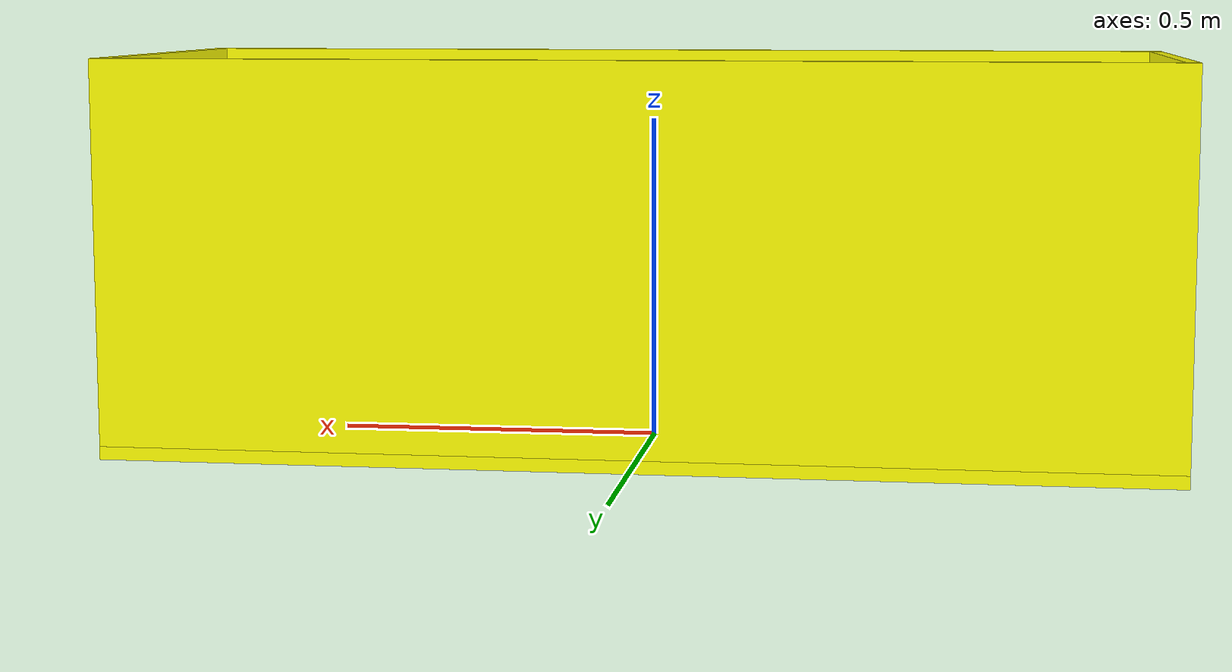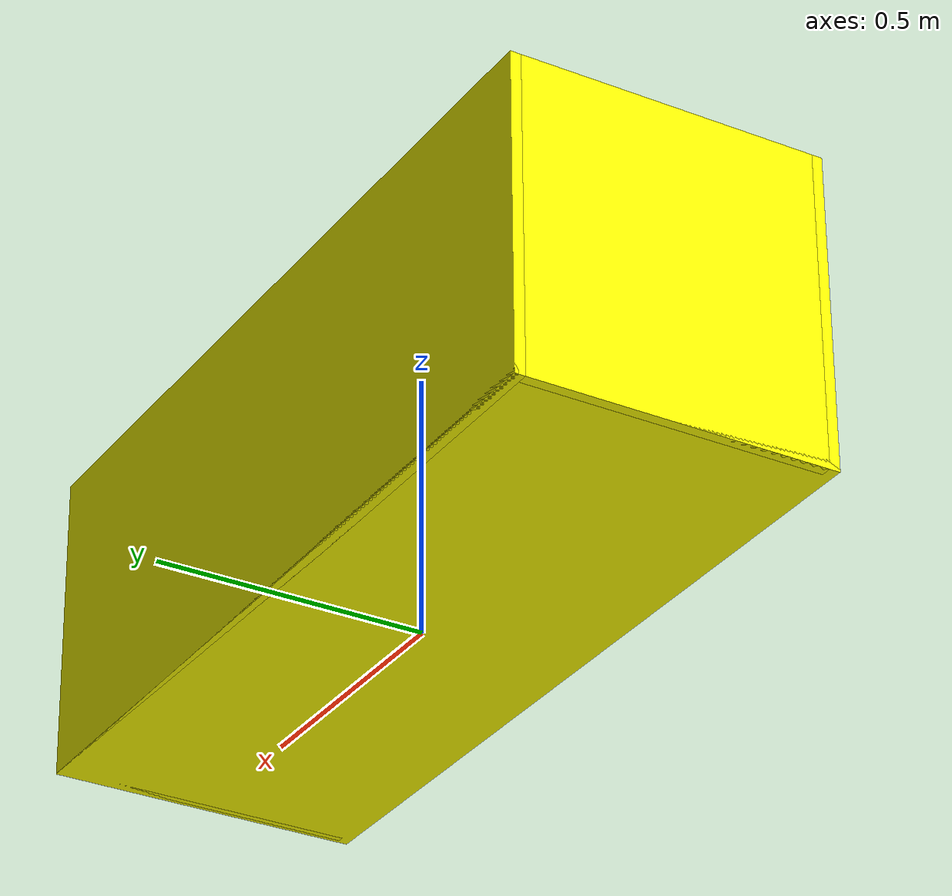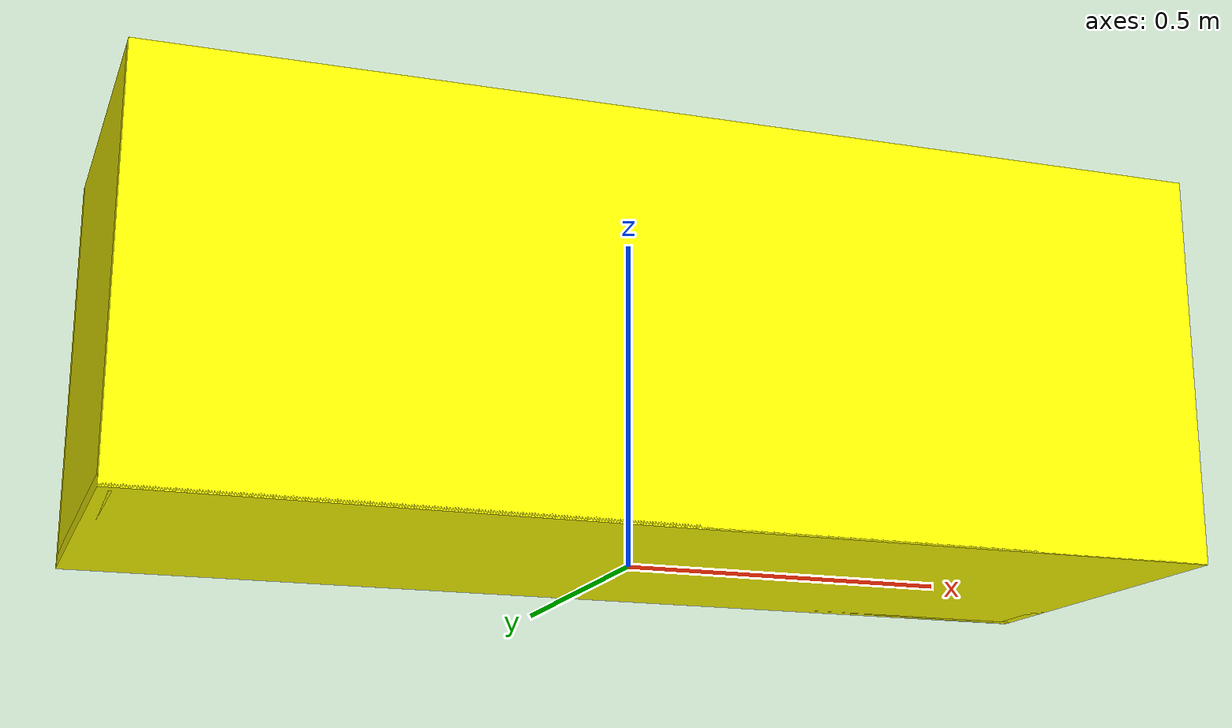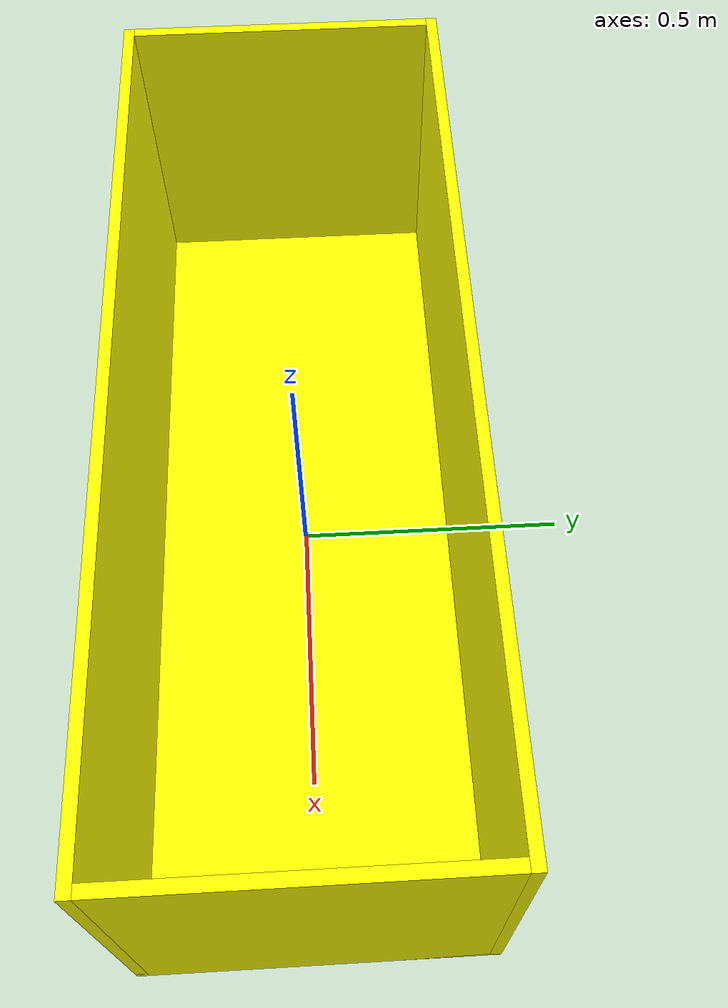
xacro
<?xml version="1.0"?>
<robot name="trash_bin" xmlns:xacro="http://ros.org/wiki/xacro">
  <xacro:property name="length" value="1.6"/>
  <xacro:property name="width" value="0.6"/>
  <xacro:property name="height" value="0.6"/>
  <xacro:property name="wall_thickness" value="0.02"/>

  <material name="default_color">
    <color rgba="1.0 1.0 0.0 1.0"/>
  </material>

  <link name="base_link">
    <inertial>
      <mass value="0.001"/>
      <inertia ixx="0.0001" ixy="0.0" ixz="0.0" iyy="0.0001" iyz="0.0" izz="0.0001"/>
    </inertial>
  </link>

  <link name="bottom">
    <visual>
      <geometry>
        <box size="${length} ${width} ${wall_thickness}"/>
      </geometry>
      <origin xyz="0 0 ${wall_thickness/2}" rpy="0 0 0"/>
      <material name="default_color"/>
    </visual>
    <collision>
      <geometry>
        <box size="${length} ${width} ${wall_thickness}"/>
      </geometry>
      <origin xyz="0 0 ${wall_thickness/2}" rpy="0 0 0"/>
    </collision>
    <inertial>
      <mass value="2.0"/>
      <inertia ixx="0.2" ixy="0.0" ixz="0.0" iyy="0.2" iyz="0.0" izz="0.2"/>
    </inertial>
  </link>

  <link name="front_wall">
    <visual>
      <geometry>
        <box size="${length} ${wall_thickness} ${height}"/>
      </geometry>
      <origin xyz="0 ${width/2 - wall_thickness/2} ${height/2}"/>
      <material name="default_color"/>
    </visual>
    <collision>
      <geometry>
        <box size="${length} ${wall_thickness} ${height}"/>
      </geometry>
      <origin xyz="0 ${width/2 - wall_thickness/2} ${height/2}"/>
    </collision>
    <inertial>
      <mass value="2.0"/>
      <inertia ixx="0.2" ixy="0.0" ixz="0.0" iyy="0.2" iyz="0.0" izz="0.2"/>
    </inertial>
  </link>

  <link name="back_wall">
    <visual>
      <geometry>
        <box size="${length} ${wall_thickness} ${height}"/>
      </geometry>
      <origin xyz="0 ${-width/2 + wall_thickness/2} ${height/2}"/>
      <material name="default_color"/>
    </visual>
    <collision>
      <geometry>
        <box size="${length} ${wall_thickness} ${height}"/>
      </geometry>
      <origin xyz="0 ${-width/2 + wall_thickness/2} ${height/2}"/>
    </collision>
    <inertial>
      <mass value="2.0"/>
      <inertia ixx="0.2" ixy="0.0" ixz="0.0" iyy="0.2" iyz="0.0" izz="0.2"/>
    </inertial>
  </link>

  <link name="left_wall">
    <visual>
      <geometry>
        <box size="${wall_thickness} ${width - 2*wall_thickness} ${height}"/>
      </geometry>
      <origin xyz="${-length/2 + wall_thickness/2} 0 ${height/2}"/>
      <material name="default_color"/>
    </visual>
    <collision>
      <geometry>
        <box size="${wall_thickness} ${width - 2*wall_thickness} ${height}"/>
      </geometry>
      <origin xyz="${-length/2 + wall_thickness/2} 0 ${height/2}"/>
    </collision>
    <inertial>
      <mass value="2.0"/>
      <inertia ixx="0.2" ixy="0.0" ixz="0.0" iyy="0.2" iyz="0.0" izz="0.2"/>
    </inertial>
  </link>

  <link name="right_wall">
    <visual>
      <geometry>
        <box size="${wall_thickness} ${width - 2*wall_thickness} ${height}"/>
      </geometry>
      <origin xyz="${length/2 - wall_thickness/2} 0 ${height/2}"/>
      <material name="default_color"/>
    </visual>
    <collision>
      <geometry>
        <box size="${wall_thickness} ${width - 2*wall_thickness} ${height}"/>
      </geometry>
      <origin xyz="${length/2 - wall_thickness/2} 0 ${height/2}"/>
    </collision>
    <inertial>
      <mass value="2.0"/>
      <inertia ixx="0.2" ixy="0.0" ixz="0.0" iyy="0.2" iyz="0.0" izz="0.2"/>
    </inertial>
  </link>

  <joint name="base_to_bottom" type="fixed">
    <parent link="base_link"/>
    <child link="bottom"/>
    <origin xyz="0 0 0" rpy="0 0 0"/>
  </joint>

  <joint name="base_to_front_wall" type="fixed">
    <parent link="base_link"/>
    <child link="front_wall"/>
    <origin xyz="0 0 0" rpy="0 0 0"/>
  </joint>

  <joint name="base_to_back_wall" type="fixed">
    <parent link="base_link"/>
    <child link="back_wall"/>
    <origin xyz="0 0 0" rpy="0 0 0"/>
  </joint>

  <joint name="base_to_left_wall" type="fixed">
    <parent link="base_link"/>
    <child link="left_wall"/>
    <origin xyz="0 0 0" rpy="0 0 0"/>
  </joint>

  <joint name="base_to_right_wall" type="fixed">
    <parent link="base_link"/>
    <child link="right_wall"/>
    <origin xyz="0 0 0" rpy="0 0 0"/>
  </joint>

  <gazebo>
    <static>false</static>
  </gazebo>

  <gazebo reference="bottom">
    <material>Gazebo/Yellow</material>
  </gazebo>
  <gazebo reference="front_wall">
    <material>Gazebo/Yellow</material>
  </gazebo>
  <gazebo reference="back_wall">
    <material>Gazebo/Yellow</material>
  </gazebo>
  <gazebo reference="left_wall">
    <material>Gazebo/Yellow</material>
  </gazebo>
  <gazebo reference="right_wall">
    <material>Gazebo/Yellow</material>
  </gazebo>
</robot>
